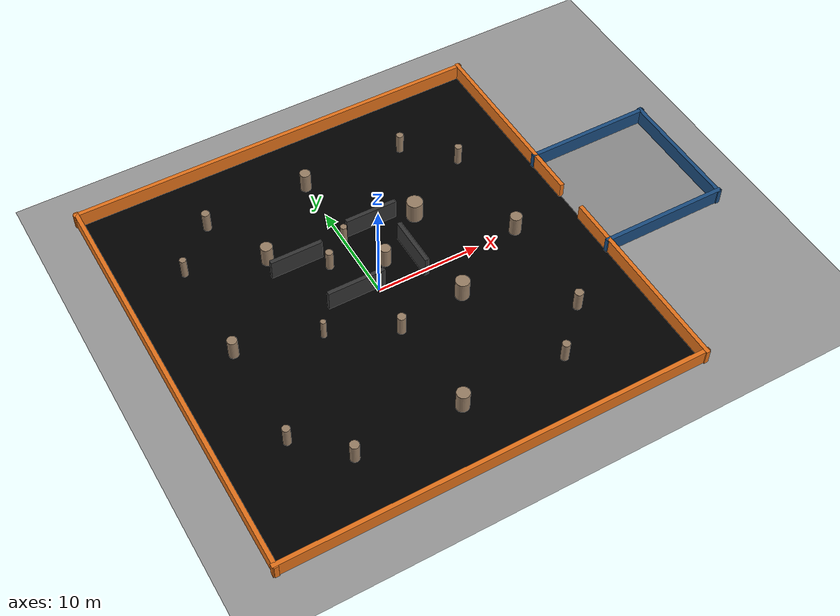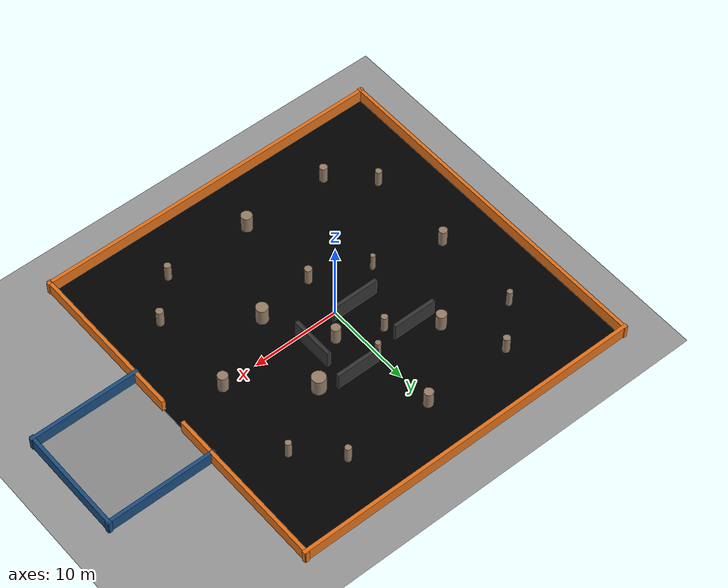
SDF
<?xml version="1.0" ?>
<sdf version="1.9">
  <!-- PX4-friendly sparse arena: no embedded rex_quadcopter models. -->
  <!-- Keep world name as "playfield" so /world/playfield/clock matches launch defaults. -->
  <world name="playfield">
    <!-- Larger timestep keeps multi-drone PX4 SITL + ToF sensors close to realtime. -->
    <physics name="4ms" type="ode">
      <max_step_size>0.004</max_step_size>
      <real_time_factor>1.0</real_time_factor>
      <real_time_update_rate>250</real_time_update_rate>
    </physics>

    <plugin filename="gz-sim-physics-system" name="gz::sim::systems::Physics" />
    <plugin filename="gz-sim-user-commands-system" name="gz::sim::systems::UserCommands" />
    <!-- PX4 SITL sensors (IMU / barometer / GPS) require these system plugins, like PX4's default worlds. -->
    <plugin filename="gz-sim-contact-system" name="gz::sim::systems::Contact" />
    <plugin filename="gz-sim-imu-system" name="gz::sim::systems::Imu" />
    <plugin filename="gz-sim-air-pressure-system" name="gz::sim::systems::AirPressure" />
    <plugin filename="gz-sim-apply-link-wrench-system" name="gz::sim::systems::ApplyLinkWrench" />
    <plugin filename="gz-sim-navsat-system" name="gz::sim::systems::NavSat" />
    <plugin filename="gz-sim-sensors-system" name="gz::sim::systems::Sensors">
      <render_engine>ogre2</render_engine>
    </plugin>
    <plugin filename="gz-sim-scene-broadcaster-system" name="gz::sim::systems::SceneBroadcaster" />

    <light type="directional" name="sun">
      <cast_shadows>false</cast_shadows>
      <pose>0 0 10 0 0 0</pose>
      <diffuse>0.8 0.8 0.8 1</diffuse>
      <specular>0.2 0.2 0.2 1</specular>
      <attenuation>
        <range>1000</range>
        <constant>0.9</constant>
        <linear>0.01</linear>
        <quadratic>0.001</quadratic>
      </attenuation>
      <direction>-0.5 0.1 -0.9</direction>
    </light>

    <!-- Base field -->
    <model name="ground_plane">
      <static>true</static>
      <link name="link">
        <collision name="collision">
          <geometry>
            <plane>
              <normal>0 0 1</normal>
              <size>40 40</size>
            </plane>
          </geometry>
        </collision>
        <visual name="visual">
          <geometry>
            <plane>
              <normal>0 0 1</normal>
              <size>40 40</size>
            </plane>
          </geometry>
          <material>
            <ambient>0.6 0.6 0.6 1</ambient>
            <diffuse>0.6 0.6 0.6 1</diffuse>
            <specular>0.2 0.2 0.2 1</specular>
          </material>
        </visual>
      </link>
    </model>

    <!-- Spawn-only region used by spawn_selector.py (drones cannot spawn in the annex). -->
    <model name="spawn_zone">
      <static>true</static>
      <pose>0 0 0 0 0 0</pose>
      <link name="link">
        <visual name="visual">
          <geometry>
            <plane>
              <normal>0 0 1</normal>
              <size>40 40</size>
            </plane>
          </geometry>
          <!-- Make it effectively invisible; this is metadata for the spawn UI. -->
          <material>
            <ambient>0 0 0 0</ambient>
            <diffuse>0 0 0 0</diffuse>
          </material>
        </visual>
      </link>
    </model>

    <!-- Perimeter walls (1.5 m) -->
    <model name="perimeter_wall_north">
      <static>true</static>
      <pose>0 20 0 0 0 0</pose>
      <link name="link">
        <collision name="collision">
          <pose>0 0 0.75 0 0 0</pose>
          <geometry>
            <box>
              <size>40.6 0.4 1.5</size>
            </box>
          </geometry>
        </collision>
        <visual name="visual">
          <pose>0 0 0.75 0 0 0</pose>
          <geometry>
            <box>
              <size>40.6 0.4 1.5</size>
            </box>
          </geometry>
          <material>
            <ambient>0.9 0.45 0.1 1</ambient>
            <diffuse>0.9 0.45 0.1 1</diffuse>
          </material>
        </visual>
      </link>
    </model>

    <model name="perimeter_wall_south">
      <static>true</static>
      <pose>0 -20 0 0 0 0</pose>
      <link name="link">
        <collision name="collision">
          <pose>0 0 0.75 0 0 0</pose>
          <geometry>
            <box>
              <size>40.6 0.4 1.5</size>
            </box>
          </geometry>
        </collision>
        <visual name="visual">
          <pose>0 0 0.75 0 0 0</pose>
          <geometry>
            <box>
              <size>40.6 0.4 1.5</size>
            </box>
          </geometry>
          <material>
            <ambient>0.9 0.45 0.1 1</ambient>
            <diffuse>0.9 0.45 0.1 1</diffuse>
          </material>
        </visual>
      </link>
    </model>

    <!-- East wall split to leave a doorway into the annex (centered at y=0). -->
    <model name="perimeter_wall_east_n">
      <static>true</static>
      <pose>20 10.9 0 0 0 0</pose>
      <link name="link">
        <collision name="collision">
          <pose>0 0 0.75 0 0 0</pose>
          <geometry>
            <box>
              <size>0.4 18.8 1.5</size>
            </box>
          </geometry>
        </collision>
        <visual name="visual">
          <pose>0 0 0.75 0 0 0</pose>
          <geometry>
            <box>
              <size>0.4 18.8 1.5</size>
            </box>
          </geometry>
          <material>
            <ambient>0.9 0.45 0.1 1</ambient>
            <diffuse>0.9 0.45 0.1 1</diffuse>
          </material>
        </visual>
      </link>
    </model>

    <model name="perimeter_wall_east_s">
      <static>true</static>
      <pose>20 -10.9 0 0 0 0</pose>
      <link name="link">
        <collision name="collision">
          <pose>0 0 0.75 0 0 0</pose>
          <geometry>
            <box>
              <size>0.4 18.8 1.5</size>
            </box>
          </geometry>
        </collision>
        <visual name="visual">
          <pose>0 0 0.75 0 0 0</pose>
          <geometry>
            <box>
              <size>0.4 18.8 1.5</size>
            </box>
          </geometry>
          <material>
            <ambient>0.9 0.45 0.1 1</ambient>
            <diffuse>0.9 0.45 0.1 1</diffuse>
          </material>
        </visual>
      </link>
    </model>

    <model name="perimeter_wall_west">
      <static>true</static>
      <pose>-20 0 0 0 0 0</pose>
      <link name="link">
        <collision name="collision">
          <pose>0 0 0.75 0 0 0</pose>
          <geometry>
            <box>
              <size>0.4 40.6 1.5</size>
            </box>
          </geometry>
        </collision>
        <visual name="visual">
          <pose>0 0 0.75 0 0 0</pose>
          <geometry>
            <box>
              <size>0.4 40.6 1.5</size>
            </box>
          </geometry>
          <material>
            <ambient>0.9 0.45 0.1 1</ambient>
            <diffuse>0.9 0.45 0.1 1</diffuse>
          </material>
        </visual>
      </link>
    </model>

    <!-- Annex: extra connected room (drones must fly through the east doorway to explore). -->
    <model name="ground_plane_annex">
      <static>true</static>
      <pose>26 0 0 0 0 0</pose>
      <link name="link">
        <collision name="collision">
          <geometry>
            <plane>
              <normal>0 0 1</normal>
              <size>12 12</size>
            </plane>
          </geometry>
        </collision>
        <visual name="visual">
          <geometry>
            <plane>
              <normal>0 0 1</normal>
              <size>12 12</size>
            </plane>
          </geometry>
          <material>
            <ambient>0.55 0.55 0.55 1</ambient>
            <diffuse>0.55 0.55 0.55 1</diffuse>
            <specular>0.2 0.2 0.2 1</specular>
          </material>
        </visual>
      </link>
    </model>

    <model name="annex_wall_north">
      <static>true</static>
      <pose>26 6 0 0 0 0</pose>
      <link name="link">
        <collision name="collision">
          <pose>0 0 0.75 0 0 0</pose>
          <geometry>
            <box>
              <size>12.6 0.4 1.5</size>
            </box>
          </geometry>
        </collision>
        <visual name="visual">
          <pose>0 0 0.75 0 0 0</pose>
          <geometry>
            <box>
              <size>12.6 0.4 1.5</size>
            </box>
          </geometry>
          <material>
            <ambient>0.1 0.3 0.5 1</ambient>
            <diffuse>0.1 0.3 0.5 1</diffuse>
          </material>
        </visual>
      </link>
    </model>

    <model name="annex_wall_south">
      <static>true</static>
      <pose>26 -6 0 0 0 0</pose>
      <link name="link">
        <collision name="collision">
          <pose>0 0 0.75 0 0 0</pose>
          <geometry>
            <box>
              <size>12.6 0.4 1.5</size>
            </box>
          </geometry>
        </collision>
        <visual name="visual">
          <pose>0 0 0.75 0 0 0</pose>
          <geometry>
            <box>
              <size>12.6 0.4 1.5</size>
            </box>
          </geometry>
          <material>
            <ambient>0.1 0.3 0.5 1</ambient>
            <diffuse>0.1 0.3 0.5 1</diffuse>
          </material>
        </visual>
      </link>
    </model>

    <model name="annex_wall_east">
      <static>true</static>
      <pose>32 0 0 0 0 0</pose>
      <link name="link">
        <collision name="collision">
          <pose>0 0 0.75 0 0 0</pose>
          <geometry>
            <box>
              <size>0.4 12.6 1.5</size>
            </box>
          </geometry>
        </collision>
        <visual name="visual">
          <pose>0 0 0.75 0 0 0</pose>
          <geometry>
            <box>
              <size>0.4 12.6 1.5</size>
            </box>
          </geometry>
          <material>
            <ambient>0.1 0.3 0.5 1</ambient>
            <diffuse>0.1 0.3 0.5 1</diffuse>
          </material>
        </visual>
      </link>
    </model>

    <!-- Sparse interior walls (2 m). Spaced to avoid tight traps. -->
    <model name="wall_a">
      <static>true</static>
      <pose>-2.0 0.5 0 0 0 0</pose>
      <link name="link">
        <collision name="collision">
          <pose>0 0 1 0 0 0</pose>
          <geometry>
            <box>
              <size>5.5 0.4 2</size>
            </box>
          </geometry>
        </collision>
        <visual name="visual">
          <pose>0 0 1 0 0 0</pose>
          <geometry>
            <box>
              <size>5.5 0.4 2</size>
            </box>
          </geometry>
          <material>
            <ambient>0.15 0.15 0.15 1</ambient>
            <diffuse>0.2 0.2 0.2 1</diffuse>
          </material>
        </visual>
      </link>
    </model>

    <model name="wall_b">
      <static>true</static>
      <pose>4.5 2.0 0 0 0 1.5708</pose>
      <link name="link">
        <collision name="collision">
          <pose>0 0 1 0 0 0</pose>
          <geometry>
            <box>
              <size>5.0 0.4 2</size>
            </box>
          </geometry>
        </collision>
        <visual name="visual">
          <pose>0 0 1 0 0 0</pose>
          <geometry>
            <box>
              <size>5.0 0.4 2</size>
            </box>
          </geometry>
          <material>
            <ambient>0.15 0.15 0.15 1</ambient>
            <diffuse>0.2 0.2 0.2 1</diffuse>
          </material>
        </visual>
      </link>
    </model>

    <model name="wall_c">
      <static>true</static>
      <pose>-5.0 6.0 0 0 0 0</pose>
      <link name="link">
        <collision name="collision">
          <pose>0 0 1 0 0 0</pose>
          <geometry>
            <box>
              <size>5.0 0.4 2</size>
            </box>
          </geometry>
        </collision>
        <visual name="visual">
          <pose>0 0 1 0 0 0</pose>
          <geometry>
            <box>
              <size>5.0 0.4 2</size>
            </box>
          </geometry>
          <material>
            <ambient>0.15 0.15 0.15 1</ambient>
            <diffuse>0.2 0.2 0.2 1</diffuse>
          </material>
        </visual>
      </link>
    </model>

    <model name="wall_d">
      <static>true</static>
      <pose>3.0 7.0 0 0 0 0</pose>
      <link name="link">
        <collision name="collision">
          <pose>0 0 1 0 0 0</pose>
          <geometry>
            <box>
              <size>5.0 0.4 2</size>
            </box>
          </geometry>
        </collision>
        <visual name="visual">
          <pose>0 0 1 0 0 0</pose>
          <geometry>
            <box>
              <size>5.0 0.4 2</size>
            </box>
          </geometry>
          <material>
            <ambient>0.15 0.15 0.15 1</ambient>
            <diffuse>0.2 0.2 0.2 1</diffuse>
          </material>
        </visual>
      </link>
    </model>

    <!-- Pillars: same height, different diameters. -->
    <model name="pillar_1">
      <static>true</static>
      <pose>-6.5 -2.0 0 0 0 0</pose>
      <link name="link">
        <collision name="collision">
          <pose>0 0 1 0 0 0</pose>
          <geometry>
            <cylinder>
              <radius>0.25</radius>
              <length>2</length>
            </cylinder>
          </geometry>
        </collision>
        <visual name="visual">
          <pose>0 0 1 0 0 0</pose>
          <geometry>
            <cylinder>
              <radius>0.25</radius>
              <length>2</length>
            </cylinder>
          </geometry>
          <material>
            <ambient>0.5 0.4 0.3 1</ambient>
            <diffuse>0.6 0.5 0.4 1</diffuse>
          </material>
        </visual>
      </link>
    </model>

    <model name="pillar_2">
      <static>true</static>
      <pose>-2.5 4.5 0 0 0 0</pose>
      <link name="link">
        <collision name="collision">
          <pose>0 0 1 0 0 0</pose>
          <geometry>
            <cylinder>
              <radius>0.35</radius>
              <length>2</length>
            </cylinder>
          </geometry>
        </collision>
        <visual name="visual">
          <pose>0 0 1 0 0 0</pose>
          <geometry>
            <cylinder>
              <radius>0.35</radius>
              <length>2</length>
            </cylinder>
          </geometry>
          <material>
            <ambient>0.5 0.4 0.3 1</ambient>
            <diffuse>0.6 0.5 0.4 1</diffuse>
          </material>
        </visual>
      </link>
    </model>

    <model name="pillar_3">
      <static>true</static>
      <pose>2.0 2.5 0 0 0 0</pose>
      <link name="link">
        <collision name="collision">
          <pose>0 0 1 0 0 0</pose>
          <geometry>
            <cylinder>
              <radius>0.50</radius>
              <length>2</length>
            </cylinder>
          </geometry>
        </collision>
        <visual name="visual">
          <pose>0 0 1 0 0 0</pose>
          <geometry>
            <cylinder>
              <radius>0.50</radius>
              <length>2</length>
            </cylinder>
          </geometry>
          <material>
            <ambient>0.5 0.4 0.3 1</ambient>
            <diffuse>0.6 0.5 0.4 1</diffuse>
          </material>
        </visual>
      </link>
    </model>

    <model name="pillar_4">
      <static>true</static>
      <pose>6.0 -4.0 0 0 0 0</pose>
      <link name="link">
        <collision name="collision">
          <pose>0 0 1 0 0 0</pose>
          <geometry>
            <cylinder>
              <radius>0.65</radius>
              <length>2</length>
            </cylinder>
          </geometry>
        </collision>
        <visual name="visual">
          <pose>0 0 1 0 0 0</pose>
          <geometry>
            <cylinder>
              <radius>0.65</radius>
              <length>2</length>
            </cylinder>
          </geometry>
          <material>
            <ambient>0.5 0.4 0.3 1</ambient>
            <diffuse>0.6 0.5 0.4 1</diffuse>
          </material>
        </visual>
      </link>
    </model>

    <model name="pillar_5">
      <static>true</static>
      <pose>0.0 6.5 0 0 0 0</pose>
      <link name="link">
        <collision name="collision">
          <pose>0 0 1 0 0 0</pose>
          <geometry>
            <cylinder>
              <radius>0.30</radius>
              <length>2</length>
            </cylinder>
          </geometry>
        </collision>
        <visual name="visual">
          <pose>0 0 1 0 0 0</pose>
          <geometry>
            <cylinder>
              <radius>0.30</radius>
              <length>2</length>
            </cylinder>
          </geometry>
          <material>
            <ambient>0.5 0.4 0.3 1</ambient>
            <diffuse>0.6 0.5 0.4 1</diffuse>
          </material>
        </visual>
      </link>
    </model>

    <model name="pillar_6">
      <static>true</static>
      <pose>-7.0 7.8 0 0 0 0</pose>
      <link name="link">
        <collision name="collision">
          <pose>0 0 1 0 0 0</pose>
          <geometry>
            <cylinder>
              <radius>0.55</radius>
              <length>2</length>
            </cylinder>
          </geometry>
        </collision>
        <visual name="visual">
          <pose>0 0 1 0 0 0</pose>
          <geometry>
            <cylinder>
              <radius>0.55</radius>
              <length>2</length>
            </cylinder>
          </geometry>
          <material>
            <ambient>0.5 0.4 0.3 1</ambient>
            <diffuse>0.6 0.5 0.4 1</diffuse>
          </material>
        </visual>
      </link>
    </model>

    <model name="pillar_7">
      <static>true</static>
      <pose>-0.5 -4.8 0 0 0 0</pose>
      <link name="link">
        <collision name="collision">
          <pose>0 0 1 0 0 0</pose>
          <geometry>
            <cylinder>
              <radius>0.40</radius>
              <length>2</length>
            </cylinder>
          </geometry>
        </collision>
        <visual name="visual">
          <pose>0 0 1 0 0 0</pose>
          <geometry>
            <cylinder>
              <radius>0.40</radius>
              <length>2</length>
            </cylinder>
          </geometry>
          <material>
            <ambient>0.5 0.4 0.3 1</ambient>
            <diffuse>0.6 0.5 0.4 1</diffuse>
          </material>
        </visual>
      </link>
    </model>

    <model name="pillar_8">
      <static>true</static>
      <pose>7.0 6.0 0 0 0 0</pose>
      <link name="link">
        <collision name="collision">
          <pose>0 0 1 0 0 0</pose>
          <geometry>
            <cylinder>
              <radius>0.75</radius>
              <length>2</length>
            </cylinder>
          </geometry>
        </collision>
        <visual name="visual">
          <pose>0 0 1 0 0 0</pose>
          <geometry>
            <cylinder>
              <radius>0.75</radius>
              <length>2</length>
            </cylinder>
          </geometry>
          <material>
            <ambient>0.5 0.4 0.3 1</ambient>
            <diffuse>0.6 0.5 0.4 1</diffuse>
          </material>
        </visual>
      </link>
    </model>

    <!-- Outer area landmarks (help ToF SLAM / exploration in the larger 40×40 arena). -->
    <model name="outer_pillar_1">
      <static>true</static>
      <pose>-14.0 -10.0 0 0 0 0</pose>
      <link name="link">
        <collision name="collision">
          <pose>0 0 1 0 0 0</pose>
          <geometry>
            <cylinder>
              <radius>0.35</radius>
              <length>2</length>
            </cylinder>
          </geometry>
        </collision>
        <visual name="visual">
          <pose>0 0 1 0 0 0</pose>
          <geometry>
            <cylinder>
              <radius>0.35</radius>
              <length>2</length>
            </cylinder>
          </geometry>
          <material>
            <ambient>0.5 0.4 0.3 1</ambient>
            <diffuse>0.6 0.5 0.4 1</diffuse>
          </material>
        </visual>
      </link>
    </model>

    <model name="outer_pillar_2">
      <static>true</static>
      <pose>-14.0 0.0 0 0 0 0</pose>
      <link name="link">
        <collision name="collision">
          <pose>0 0 1 0 0 0</pose>
          <geometry>
            <cylinder>
              <radius>0.45</radius>
              <length>2</length>
            </cylinder>
          </geometry>
        </collision>
        <visual name="visual">
          <pose>0 0 1 0 0 0</pose>
          <geometry>
            <cylinder>
              <radius>0.45</radius>
              <length>2</length>
            </cylinder>
          </geometry>
          <material>
            <ambient>0.5 0.4 0.3 1</ambient>
            <diffuse>0.6 0.5 0.4 1</diffuse>
          </material>
        </visual>
      </link>
    </model>

    <model name="outer_pillar_3">
      <static>true</static>
      <pose>-14.0 10.0 0 0 0 0</pose>
      <link name="link">
        <collision name="collision">
          <pose>0 0 1 0 0 0</pose>
          <geometry>
            <cylinder>
              <radius>0.30</radius>
              <length>2</length>
            </cylinder>
          </geometry>
        </collision>
        <visual name="visual">
          <pose>0 0 1 0 0 0</pose>
          <geometry>
            <cylinder>
              <radius>0.30</radius>
              <length>2</length>
            </cylinder>
          </geometry>
          <material>
            <ambient>0.5 0.4 0.3 1</ambient>
            <diffuse>0.6 0.5 0.4 1</diffuse>
          </material>
        </visual>
      </link>
    </model>

    <model name="outer_pillar_4">
      <static>true</static>
      <pose>14.0 -10.0 0 0 0 0</pose>
      <link name="link">
        <collision name="collision">
          <pose>0 0 1 0 0 0</pose>
          <geometry>
            <cylinder>
              <radius>0.40</radius>
              <length>2</length>
            </cylinder>
          </geometry>
        </collision>
        <visual name="visual">
          <pose>0 0 1 0 0 0</pose>
          <geometry>
            <cylinder>
              <radius>0.40</radius>
              <length>2</length>
            </cylinder>
          </geometry>
          <material>
            <ambient>0.5 0.4 0.3 1</ambient>
            <diffuse>0.6 0.5 0.4 1</diffuse>
          </material>
        </visual>
      </link>
    </model>

    <model name="outer_pillar_5">
      <static>true</static>
      <pose>14.0 0.0 0 0 0 0</pose>
      <link name="link">
        <collision name="collision">
          <pose>0 0 1 0 0 0</pose>
          <geometry>
            <cylinder>
              <radius>0.55</radius>
              <length>2</length>
            </cylinder>
          </geometry>
        </collision>
        <visual name="visual">
          <pose>0 0 1 0 0 0</pose>
          <geometry>
            <cylinder>
              <radius>0.55</radius>
              <length>2</length>
            </cylinder>
          </geometry>
          <material>
            <ambient>0.5 0.4 0.3 1</ambient>
            <diffuse>0.6 0.5 0.4 1</diffuse>
          </material>
        </visual>
      </link>
    </model>

    <model name="outer_pillar_6">
      <static>true</static>
      <pose>14.0 10.0 0 0 0 0</pose>
      <link name="link">
        <collision name="collision">
          <pose>0 0 1 0 0 0</pose>
          <geometry>
            <cylinder>
              <radius>0.33</radius>
              <length>2</length>
            </cylinder>
          </geometry>
        </collision>
        <visual name="visual">
          <pose>0 0 1 0 0 0</pose>
          <geometry>
            <cylinder>
              <radius>0.33</radius>
              <length>2</length>
            </cylinder>
          </geometry>
          <material>
            <ambient>0.5 0.4 0.3 1</ambient>
            <diffuse>0.6 0.5 0.4 1</diffuse>
          </material>
        </visual>
      </link>
    </model>

    <model name="outer_pillar_7">
      <static>true</static>
      <pose>-10.0 14.0 0 0 0 0</pose>
      <link name="link">
        <collision name="collision">
          <pose>0 0 1 0 0 0</pose>
          <geometry>
            <cylinder>
              <radius>0.38</radius>
              <length>2</length>
            </cylinder>
          </geometry>
        </collision>
        <visual name="visual">
          <pose>0 0 1 0 0 0</pose>
          <geometry>
            <cylinder>
              <radius>0.38</radius>
              <length>2</length>
            </cylinder>
          </geometry>
          <material>
            <ambient>0.5 0.4 0.3 1</ambient>
            <diffuse>0.6 0.5 0.4 1</diffuse>
          </material>
        </visual>
      </link>
    </model>

    <model name="outer_pillar_8">
      <static>true</static>
      <pose>0.0 14.0 0 0 0 0</pose>
      <link name="link">
        <collision name="collision">
          <pose>0 0 1 0 0 0</pose>
          <geometry>
            <cylinder>
              <radius>0.50</radius>
              <length>2</length>
            </cylinder>
          </geometry>
        </collision>
        <visual name="visual">
          <pose>0 0 1 0 0 0</pose>
          <geometry>
            <cylinder>
              <radius>0.50</radius>
              <length>2</length>
            </cylinder>
          </geometry>
          <material>
            <ambient>0.5 0.4 0.3 1</ambient>
            <diffuse>0.6 0.5 0.4 1</diffuse>
          </material>
        </visual>
      </link>
    </model>

    <model name="outer_pillar_9">
      <static>true</static>
      <pose>10.0 14.0 0 0 0 0</pose>
      <link name="link">
        <collision name="collision">
          <pose>0 0 1 0 0 0</pose>
          <geometry>
            <cylinder>
              <radius>0.34</radius>
              <length>2</length>
            </cylinder>
          </geometry>
        </collision>
        <visual name="visual">
          <pose>0 0 1 0 0 0</pose>
          <geometry>
            <cylinder>
              <radius>0.34</radius>
              <length>2</length>
            </cylinder>
          </geometry>
          <material>
            <ambient>0.5 0.4 0.3 1</ambient>
            <diffuse>0.6 0.5 0.4 1</diffuse>
          </material>
        </visual>
      </link>
    </model>

    <model name="outer_pillar_10">
      <static>true</static>
      <pose>-10.0 -14.0 0 0 0 0</pose>
      <link name="link">
        <collision name="collision">
          <pose>0 0 1 0 0 0</pose>
          <geometry>
            <cylinder>
              <radius>0.42</radius>
              <length>2</length>
            </cylinder>
          </geometry>
        </collision>
        <visual name="visual">
          <pose>0 0 1 0 0 0</pose>
          <geometry>
            <cylinder>
              <radius>0.42</radius>
              <length>2</length>
            </cylinder>
          </geometry>
          <material>
            <ambient>0.5 0.4 0.3 1</ambient>
            <diffuse>0.6 0.5 0.4 1</diffuse>
          </material>
        </visual>
      </link>
    </model>

    <model name="outer_pillar_11">
      <static>true</static>
      <pose>0.0 -14.0 0 0 0 0</pose>
      <link name="link">
        <collision name="collision">
          <pose>0 0 1 0 0 0</pose>
          <geometry>
            <cylinder>
              <radius>0.60</radius>
              <length>2</length>
            </cylinder>
          </geometry>
        </collision>
        <visual name="visual">
          <pose>0 0 1 0 0 0</pose>
          <geometry>
            <cylinder>
              <radius>0.60</radius>
              <length>2</length>
            </cylinder>
          </geometry>
          <material>
            <ambient>0.5 0.4 0.3 1</ambient>
            <diffuse>0.6 0.5 0.4 1</diffuse>
          </material>
        </visual>
      </link>
    </model>

    <model name="outer_pillar_12">
      <static>true</static>
      <pose>10.0 -14.0 0 0 0 0</pose>
      <link name="link">
        <collision name="collision">
          <pose>0 0 1 0 0 0</pose>
          <geometry>
            <cylinder>
              <radius>0.36</radius>
              <length>2</length>
            </cylinder>
          </geometry>
        </collision>
        <visual name="visual">
          <pose>0 0 1 0 0 0</pose>
          <geometry>
            <cylinder>
              <radius>0.36</radius>
              <length>2</length>
            </cylinder>
          </geometry>
          <material>
            <ambient>0.5 0.4 0.3 1</ambient>
            <diffuse>0.6 0.5 0.4 1</diffuse>
          </material>
        </visual>
      </link>
    </model>

  </world>
</sdf>
